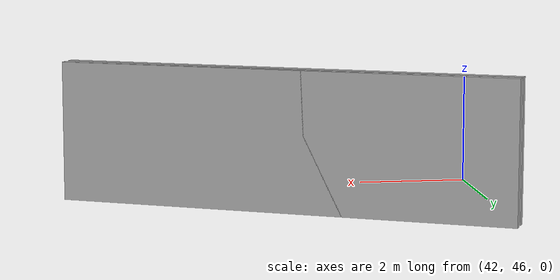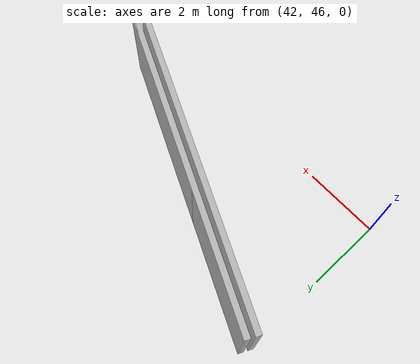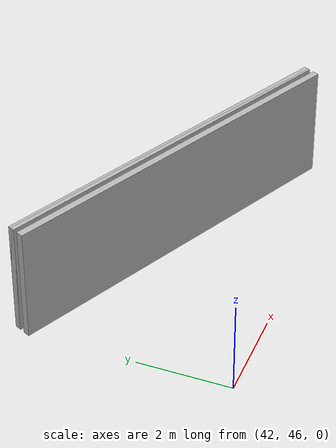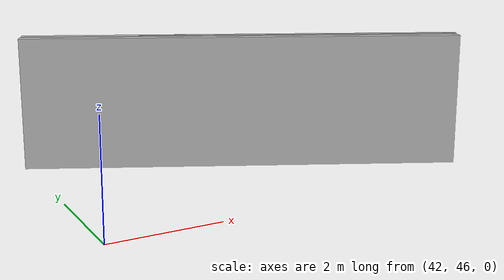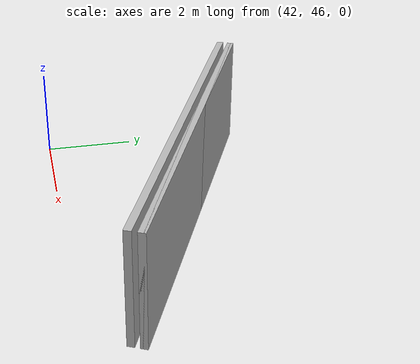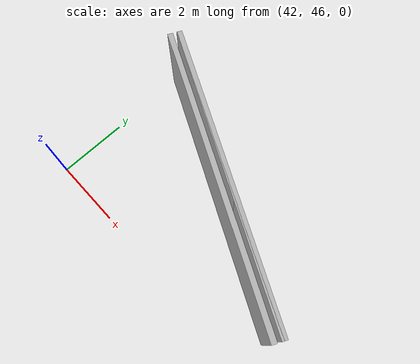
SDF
<?xml version="1.0" ?>
<sdf version="1.6">
  <model name="sps_0210">
    <pose frame="">0 0 0 0 -0 0</pose>
    <static>1</static>
    <self_collide>0</self_collide>
    <allow_auto_disable>0</allow_auto_disable>
    <link name="Wall4338">
      <kinematic>0</kinematic>
      <gravity>1</gravity>
      <self_collide>0</self_collide>
      <collision name="collision">
        <geometry>
          <box>
            <size>8.26102 0.15 2.5</size>
          </box>
        </geometry>
        <pose frame="">0 0 0 0 -0 0</pose>
      </collision>
      <visual name="visual">
        <geometry>
          <box>
            <size>8.26102 0.15 2.5</size>
          </box>
        </geometry>
        <pose frame="">0 0 0 0 -0 0</pose>
        <cast_shadows>1</cast_shadows>
        <transparency>0.0</transparency>
      </visual>
      <pose frame="">45.8216 48.7985 1.25 0 -0 2.70227</pose>
    </link>
    <link name="Wall37859">
      <kinematic>0</kinematic>
      <gravity>1</gravity>
      <self_collide>0</self_collide>
      <collision name="collision">
        <geometry>
          <box>
            <size>8.26165 0.15 2.5</size>
          </box>
        </geometry>
        <pose frame="">0 0 0 0 -0 0</pose>
      </collision>
      <visual name="visual">
        <geometry>
          <box>
            <size>8.26165 0.15 2.5</size>
          </box>
        </geometry>
        <pose frame="">0 0 0 0 -0 0</pose>
        <cast_shadows>1</cast_shadows>
        <transparency>0.0</transparency>
      </visual>
      <pose frame="">45.7129 48.5734 1.25 0 0 -0.439309</pose>
    </link>
    <link name="Wall37942">
      <kinematic>0</kinematic>
      <gravity>1</gravity>
      <self_collide>0</self_collide>
      <collision name="collision">
        <geometry>
          <box>
            <size>8.26102 0.15 2.5</size>
          </box>
        </geometry>
        <pose frame="">0 0 0 0 -0 0</pose>
      </collision>
      <visual name="visual">
        <geometry>
          <box>
            <size>8.26102 0.15 2.5</size>
          </box>
        </geometry>
        <pose frame="">0 0 0 0 -0 0</pose>
        <cast_shadows>1</cast_shadows>
        <transparency>0.0</transparency>
      </visual>
      <pose frame="">45.8216 48.7985 1.25 0 0 -0.43932</pose>
    </link>
  </model>
</sdf>
